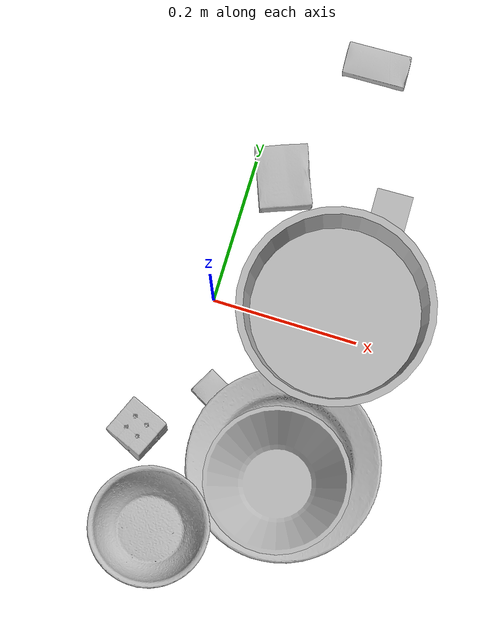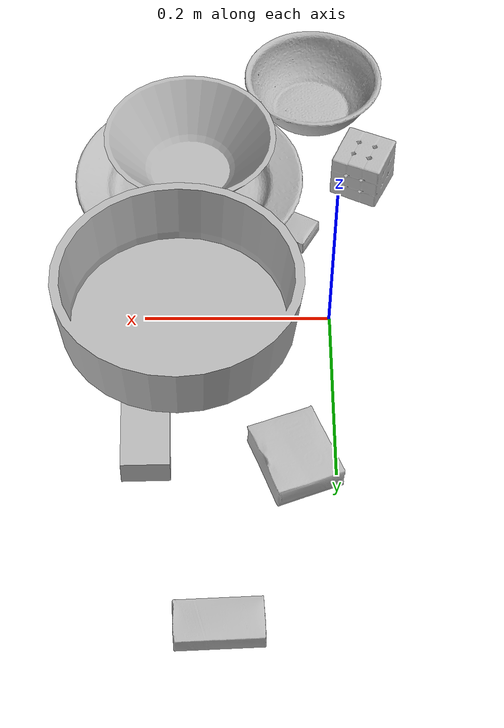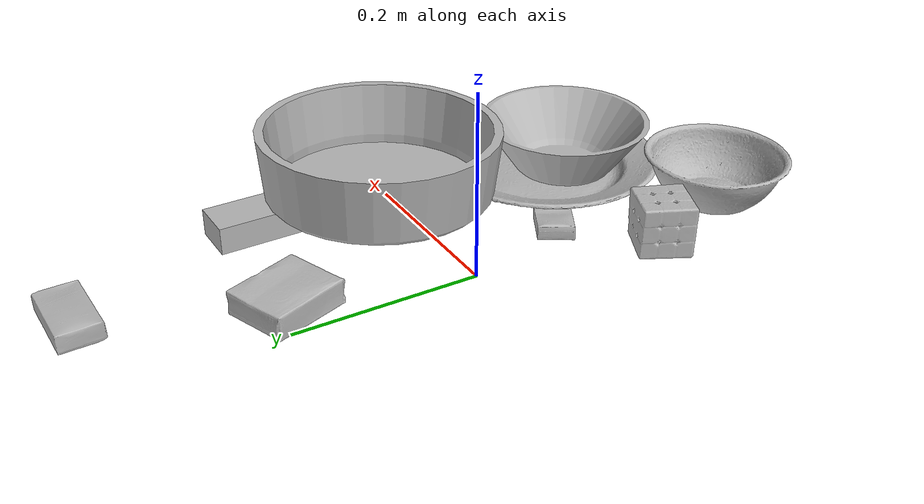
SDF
<sdf version="1.4">
  <world name="default">
    <light name="light1" type="point">
      <pose>0 0 1 0 0 0</pose>
      <diffuse>3 3 3 1</diffuse>
      <specular>3 3 3 1</specular>
    </light>
    <light name="light2" type="point">
      <pose>0 0.5 2 0 0 0</pose>
      <diffuse>1 1 1 1</diffuse>
      <specular>1 1 1 1</specular>
    </light>
    <light name="light3" type="point">
      <pose>0 0.5 2 0 0 0</pose>
      <diffuse>3 3 3 1</diffuse>
      <specular>3 3 3 1</specular>
    </light>
    <scene>
      <ambient>0.7 0.7 0.7</ambient>
    </scene>
    <model name="box1">
      <link name="link_box1">
        <collision name="default">
          <geometry>
            <mesh>
              <uri>model://jenga/collision_meshes/collision.obj</uri>
              <scale>1.0 1.0 1.0</scale>
            </mesh>
          </geometry>
          <surface>
            <friction>
              <ode>
                <mu>0.5</mu>
                <mu2>0.5</mu2>
              </ode>
            </friction>
          <contact>
        <ode>
            <max_vel>0</max_vel>
            <min_depth>0.0001</min_depth>
            <kp>1e8</kp>
        </ode>
    </contact></surface>
        </collision>
        <visual name="default">
          <geometry>
            <mesh>
              <uri>model://jenga/visual_meshes/visual.dae</uri>
              <scale>1.0 1.0 1.0</scale>
            </mesh>
          </geometry>
        </visual>
        <inertial>
          <mass>0.2830650806427002</mass>
          <pose>-2.502855807051674e-07 -0.00010250010382151231 -4.0923401684267446e-05 0.0 -7.34215461761844e-07 0.0</pose>
          <inertia>
            <ixx>7.833097e-05</ixx>
            <iyy>0.0005307686</iyy>
            <izz>0.0005666406</izz>
            <ixy>0</ixy>
            <ixz>0</ixz>
            <iyz>0</iyz>
          </inertia>
        </inertial>
      </link>
      <pose>0.1947750300168991 0.13220401108264923 0.015015698038041592 -0.0006438429858009505 -1.7613206527812282e-06 1.5968323372629467</pose>
    </model>
    <model name="box11">
      <link name="link_box11">
        <collision name="default">
          <geometry>
            <mesh>
              <uri>model://cracker_box/collision_meshes/collision.obj</uri>
              <scale>0.25 0.25 0.25</scale>
            </mesh>
          </geometry>
          <surface>
            <friction>
              <ode>
                <mu>0.5</mu>
                <mu2>0.5</mu2>
              </ode>
            </friction>
          <contact>
        <ode>
            <max_vel>0</max_vel>
            <min_depth>0.0001</min_depth>
            <kp>1e8</kp>
        </ode>
    </contact></surface>
        </collision>
        <visual name="default">
          <geometry>
            <mesh>
              <uri>model://cracker_box/visual_meshes/visual.dae</uri>
              <scale>0.25 0.25 0.25</scale>
            </mesh>
          </geometry>
        </visual>
        <inertial>
          <mass>0.04137800261378288</mass>
          <pose>0.00023660347505938262 6.358561950037256e-05 -0.0004257383698131889 -0.00031620748486547713 -0.011106488669102847 0.002546795699546287</pose>
          <inertia>
            <ixx>6.577948e-06</ixx>
            <iyy>1.0861484e-05</iyy>
            <izz>1.5500336e-05</izz>
            <ixy>0</ixy>
            <ixz>0</ixz>
            <iyz>0</iyz>
          </inertia>
        </inertial>
      </link>
      <pose>0.039730627089738846 -0.12135706841945648 0.009120449423789978 -0.011787935971895827 -0.00736716533873091 2.635686412620317</pose>
    </model>
    <model name="box2">
      <link name="link_box2">
        <collision name="default">
          <geometry>
            <mesh>
              <uri>model://gelatin_box/collision_meshes/collision.obj</uri>
              <scale>1.0 1.0 1.0</scale>
            </mesh>
          </geometry>
          <surface>
            <friction>
              <ode>
                <mu>0.5</mu>
                <mu2>0.5</mu2>
              </ode>
            </friction>
          <contact>
        <ode>
            <max_vel>0</max_vel>
            <min_depth>0.0001</min_depth>
            <kp>1e8</kp>
        </ode>
    </contact></surface>
        </collision>
        <visual name="default">
          <geometry>
            <mesh>
              <uri>model://gelatin_box/visual_meshes/visual.dae</uri>
              <scale>1.0 1.0 1.0</scale>
            </mesh>
          </geometry>
        </visual>
        <inertial>
          <mass>0.22900472581386566</mass>
          <pose>0.000431961816502735 0.00011156871914863586 -0.0003640321083366871 -0.001050372089182411 -0.004755818223717792 0.016440559471606643</pose>
          <inertia>
            <ixx>0.00016165864</ixx>
            <iyy>0.00011547193</iyy>
            <izz>0.00024608054</izz>
            <ixy>0</ixy>
            <ixz>0</ixz>
            <iyz>0</iyz>
          </inertia>
        </inertial>
      </link>
      <pose>0.041792742908000946 0.18548133969306946 0.015168318524956703 0.0055966923856434 -0.007303753069219337 0.359309778899495</pose>
    </model>
    <model name="box21">
      <link name="link_box21">
        <collision name="default">
          <geometry>
            <mesh>
              <uri>model://sugar_box/collision_meshes/collision.obj</uri>
              <scale>0.5 0.5 0.5</scale>
            </mesh>
          </geometry>
          <surface>
            <friction>
              <ode>
                <mu>0.5</mu>
                <mu2>0.5</mu2>
              </ode>
            </friction>
          <contact>
        <ode>
            <max_vel>0</max_vel>
            <min_depth>0.0001</min_depth>
            <kp>1e8</kp>
        </ode>
    </contact></surface>
        </collision>
        <visual name="default">
          <geometry>
            <mesh>
              <uri>model://sugar_box/visual_meshes/visual.dae</uri>
              <scale>0.5 0.5 0.5</scale>
            </mesh>
          </geometry>
        </visual>
        <inertial>
          <mass>0.12271630764007568</mass>
          <pose>0.0005171863595023751 1.924554817378521e-05 -0.00018182404164690524 -0.00040462595111886014 0.0010506636380741379 0.0026153785562511135</pose>
          <inertia>
            <ixx>2.5561721e-05</ixx>
            <iyy>8.262075e-05</iyy>
            <izz>9.890688e-05</izz>
            <ixy>0</ixy>
            <ixz>0</ixz>
            <iyz>0</iyz>
          </inertia>
        </inertial>
      </link>
      <pose>0.1184176653623581 0.37231025099754333 0.01139930821955204 0.0007745124253894526 -0.023433022353145733 -3.10805755407338</pose>
    </model>
    <model name="box3">
      <link name="link_box3">
        <collision name="default">
          <geometry>
            <mesh>
              <uri>model://rubiks_cube/collision_meshes/collision.obj</uri>
              <scale>1.0 1.0 1.0</scale>
            </mesh>
          </geometry>
          <surface>
            <friction>
              <ode>
                <mu>0.5</mu>
                <mu2>0.5</mu2>
              </ode>
            </friction>
          <contact>
        <ode>
            <max_vel>0</max_vel>
            <min_depth>0.0001</min_depth>
            <kp>1e8</kp>
        </ode>
    </contact></surface>
        </collision>
        <visual name="default">
          <geometry>
            <mesh>
              <uri>model://rubiks_cube/visual_meshes/visual.dae</uri>
              <scale>1.0 1.0 1.0</scale>
            </mesh>
          </geometry>
        </visual>
        <inertial>
          <mass>0.16665811836719513</mass>
          <pose>2.6721039830590598e-05 5.256966323941015e-05 -7.264316082000732e-06 -0.05467166844566422 -0.0981397083583286 -0.034457090447706985</pose>
          <inertia>
            <ixx>9.20898e-05</ixx>
            <iyy>9.166034e-05</iyy>
            <izz>9.285292e-05</izz>
            <ixy>0</ixy>
            <ixz>0</ixz>
            <iyz>0</iyz>
          </inertia>
        </inertial>
      </link>
      <pose>-0.04452452436089516 -0.19834670424461365 0.02867894060909748 -5.238601326668665e-06 -2.1840335482320314e-06 2.723929527963705</pose>
    </model>
    <model name="box31">
      <link name="link_box31">
        <collision name="default">
          <geometry>
            <mesh>
              <uri>model://pudding_box/collision_meshes/collision.obj</uri>
              <scale>0.5 0.5 0.5</scale>
            </mesh>
          </geometry>
          <surface>
            <friction>
              <ode>
                <mu>0.5</mu>
                <mu2>0.5</mu2>
              </ode>
            </friction>
          <contact>
        <ode>
            <max_vel>0</max_vel>
            <min_depth>0.0001</min_depth>
            <kp>1e8</kp>
        </ode>
    </contact></surface>
        </collision>
        <visual name="default">
          <geometry>
            <mesh>
              <uri>model://pudding_box/visual_meshes/visual.dae</uri>
              <scale>0.5 0.5 0.5</scale>
            </mesh>
          </geometry>
        </visual>
        <inertial>
          <mass>0.023591291159391403</mass>
          <pose>0.00024474109522998333 0.00040339428232982755 -0.0002594413817860186 0.00521310040348307 -0.006603797312523218 0.020079827030686108</pose>
          <inertia>
            <ixx>6.667184e-06</ixx>
            <iyy>4.4857293e-06</iyy>
            <izz>9.845841e-06</izz>
            <ixy>0</ixy>
            <ixz>0</ixz>
            <iyz>0</iyz>
          </inertia>
        </inertial>
      </link>
      <pose>0.21846136450767517 -0.016600990667939186 0.00986290629953146 0.022348515350177418 -0.011391667530762253 -2.931531990285741</pose>
    </model>
    <model name="plate1">
      <link name="link_plate1">
        <collision name="default">
          <geometry>
            <mesh>
              <uri>model://plate/collision_meshes/collision.obj</uri>
              <scale>1.0 1.0 1.0</scale>
            </mesh>
          </geometry>
          <surface>
            <friction>
              <ode>
                <mu>0.5</mu>
                <mu2>0.5</mu2>
              </ode>
            </friction>
          <contact>
        <ode>
            <max_vel>0</max_vel>
            <min_depth>0.0001</min_depth>
            <kp>1e8</kp>
        </ode>
    </contact></surface>
        </collision>
        <visual name="default">
          <geometry>
            <mesh>
              <uri>model://plate/visual_meshes/visual.dae</uri>
              <scale>1.0 1.0 1.0</scale>
            </mesh>
          </geometry>
        </visual>
        <inertial>
          <mass>0.2114637792110443</mass>
          <pose>-0.0006044656038284302 0.0002782588708214462 -0.0010561993112787604 0.002218744002621918 -0.003225513006599694 0.45262307488796183</pose>
          <inertia>
            <ixx>0.0009892316</ixx>
            <iyy>0.0009797702</iyy>
            <izz>0.0019347895</izz>
            <ixy>0</ixy>
            <ixz>0</ixz>
            <iyz>0</iyz>
          </inertia>
        </inertial>
      </link>
      <pose>0.15427976846694946 -0.18782535195350647 0.013731948100030422 1.2610129912632948e-06 -4.7959055908765105e-05 -0.36917087618575334</pose>
    </model>
    <model name="bowl1">
      <link name="link_bowl1">
        <collision name="default">
          <geometry>
            <mesh>
              <uri>model://bowl_a/collision_meshes/collision.obj</uri>
              <scale>1.0 1.0 1.0</scale>
            </mesh>
          </geometry>
          <surface>
            <friction>
              <ode>
                <mu>0.5</mu>
                <mu2>0.5</mu2>
              </ode>
            </friction>
          <contact>
        <ode>
            <max_vel>0</max_vel>
            <min_depth>0.0001</min_depth>
            <kp>1e8</kp>
        </ode>
    </contact></surface>
        </collision>
        <visual name="default">
          <geometry>
            <mesh>
              <uri>model://bowl_a/visual_meshes/visual.dae</uri>
              <scale>1.0 1.0 1.0</scale>
            </mesh>
          </geometry>
        </visual>
        <inertial>
          <mass>0.48499906063079834</mass>
          <pose>0.00027867438620887697 4.731262743007392e-05 -0.0013765298062935472 -0.0009805334386135593 -0.0010938262367740986 -0.19123808511586568</pose>
          <inertia>
            <ixx>0.0013808149</ixx>
            <iyy>0.0013892918</iyy>
            <izz>0.0024558324</izz>
            <ixy>0</ixy>
            <ixz>0</ixz>
            <iyz>0</iyz>
          </inertia>
        </inertial>
      </link>
      <pose>0.15367142856121063 -0.21304570138454437 0.03473901376128197 0.004417662929509871 -0.010638711047902268 0.17123885217391974</pose>
    </model>
    <model name="plate2">
      <link name="link_plate2">
        <collision name="default">
          <geometry>
            <mesh>
              <uri>model://pan_tefal/collision_meshes/collision.obj</uri>
              <scale>1.0 1.0 1.0</scale>
            </mesh>
          </geometry>
          <surface>
            <friction>
              <ode>
                <mu>0.5</mu>
                <mu2>0.5</mu2>
              </ode>
            </friction>
          <contact>
        <ode>
            <max_vel>0</max_vel>
            <min_depth>0.0001</min_depth>
            <kp>1e8</kp>
        </ode>
    </contact></surface>
        </collision>
        <visual name="default">
          <geometry>
            <mesh>
              <uri>model://pan_tefal/visual_meshes/visual.dae</uri>
              <scale>1.0 1.0 1.0</scale>
            </mesh>
          </geometry>
        </visual>
        <inertial>
          <mass>1.510846495628357</mass>
          <pose>-0.00018002149590756744 3.279069278505631e-05 -0.008514934219419956 0.0008190286460061649 -0.00033014112223844094 -0.3318560039733936</pose>
          <inertia>
            <ixx>0.010429303</ixx>
            <iyy>0.010496541</iyy>
            <izz>0.01919834</izz>
            <ixy>0</ixy>
            <ixz>0</ixz>
            <iyz>0</iyz>
          </inertia>
        </inertial>
      </link>
      <pose>0.16244067251682281 0.024551117792725563 0.06745142489671707 0.027289812951154322 -0.013989059091838065 0.53562094783351</pose>
    </model>
    <model name="bowl2">
      <link name="link_bowl2">
        <collision name="default">
          <geometry>
            <mesh>
              <uri>model://bowl/collision_meshes/collision.obj</uri>
              <scale>1.0 1.0 1.0</scale>
            </mesh>
          </geometry>
          <surface>
            <friction>
              <ode>
                <mu>0.5</mu>
                <mu2>0.5</mu2>
              </ode>
            </friction>
          <contact>
        <ode>
            <max_vel>0</max_vel>
            <min_depth>0.0001</min_depth>
            <kp>1e8</kp>
        </ode>
    </contact></surface>
        </collision>
        <visual name="default">
          <geometry>
            <mesh>
              <uri>model://bowl/visual_meshes/visual.dae</uri>
              <scale>1.0 1.0 1.0</scale>
            </mesh>
          </geometry>
        </visual>
        <inertial>
          <mass>0.12714597582817078</mass>
          <pose>0.0002044505235971883 -0.0010302012087777257 -0.0008042659610509872 -0.015764101160635133 0.01454679544325816 0.7140405339594252</pose>
          <inertia>
            <ixx>0.0002920644</ixx>
            <iyy>0.00028553858</iyy>
            <izz>0.0004913528</izz>
            <ixy>0</ixy>
            <ixz>0</ixz>
            <iyz>0</iyz>
          </inertia>
        </inertial>
      </link>
      <pose>0.00999874621629715 -0.31944406032562256 0.02778000198304653 1.6037227302847134e-08 -7.940763691412895e-10 2.6520718513260944</pose>
    </model>
  <physics type="ode">
      <max_contacts>50</max_contacts>
      <ode>
        <solver>
          <type>quick</type>
          <iters>75</iters>
        </solver>
        <constraints>
          <contact_max_correcting_vel>0</contact_max_correcting_vel>
          <contact_surface_layer>0</contact_surface_layer>
        </constraints>
      </ode>
    </physics></world>
</sdf>
